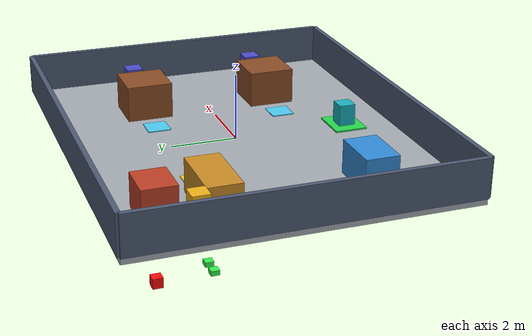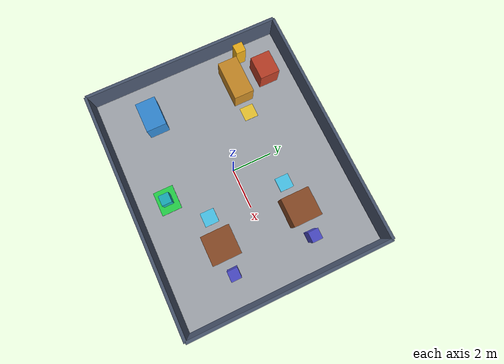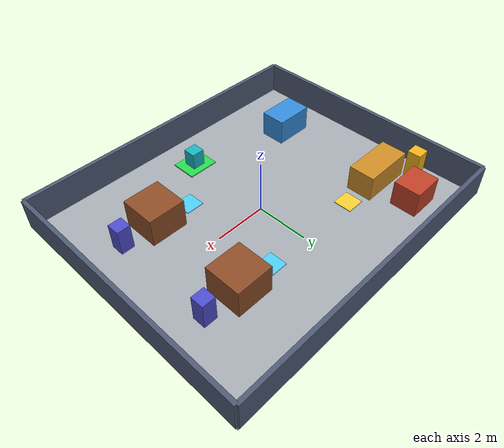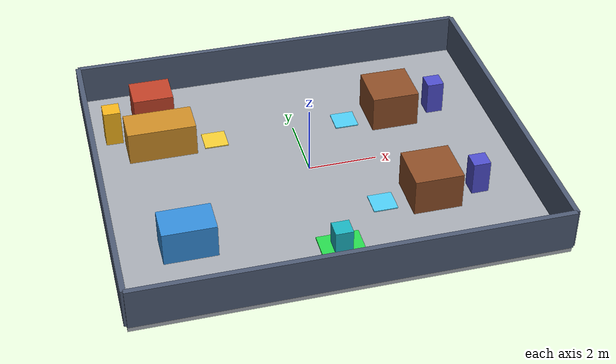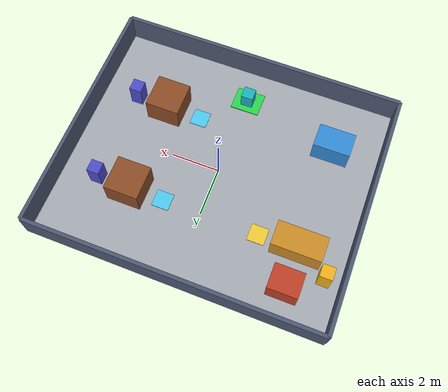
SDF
<?xml version='1.0' encoding='utf-8'?>
<sdf version="1.9">
  <world name="robo_restaurant">
    <physics name="default" type="ignored">
      <max_step_size>0.001</max_step_size>
      <real_time_factor>1</real_time_factor>
    </physics>
    <plugin filename="gz-sim-physics-system" name="gz::sim::systems::Physics" />
    <plugin filename="gz-sim-user-commands-system" name="gz::sim::systems::UserCommands" />
    <plugin filename="gz-sim-scene-broadcaster-system" name="gz::sim::systems::SceneBroadcaster" />
    <gravity>0 0 -9.81</gravity>
    <light name="sun" type="directional">
      <pose>0 0 8 0 0 0</pose>
      <diffuse>0.9 0.9 0.9 1</diffuse>
      <direction>-0.3 0.2 -1</direction>
    </light>
    <model name="floor">
      <static>true</static>
      <pose>0 0 -0.1 0 0 0</pose>
      <link name="body">
        <collision name="collision">
          <geometry>
            <box>
              <size>12 10 0.2</size>
            </box>
          </geometry>
        </collision>
        <visual name="visual">
          <geometry>
            <box>
              <size>12 10 0.2</size>
            </box>
          </geometry>
          <material>
            <ambient>0.65 0.67 0.7 1</ambient>
            <diffuse>0.65 0.67 0.7 1</diffuse>
          </material>
        </visual>
      </link>
    </model>
    <model name="north_wall">
      <static>true</static>
      <pose>0 5 0.6 0 0 0</pose>
      <link name="body">
        <collision name="collision">
          <geometry>
            <box>
              <size>12 0.15 1.2</size>
            </box>
          </geometry>
        </collision>
        <visual name="visual">
          <geometry>
            <box>
              <size>12 0.15 1.2</size>
            </box>
          </geometry>
          <material>
            <ambient>0.3 0.35 0.45 1</ambient>
            <diffuse>0.3 0.35 0.45 1</diffuse>
          </material>
        </visual>
      </link>
    </model>
    <model name="south_wall">
      <static>true</static>
      <pose>0 -5 0.6 0 0 0</pose>
      <link name="body">
        <collision name="collision">
          <geometry>
            <box>
              <size>12 0.15 1.2</size>
            </box>
          </geometry>
        </collision>
        <visual name="visual">
          <geometry>
            <box>
              <size>12 0.15 1.2</size>
            </box>
          </geometry>
          <material>
            <ambient>0.3 0.35 0.45 1</ambient>
            <diffuse>0.3 0.35 0.45 1</diffuse>
          </material>
        </visual>
      </link>
    </model>
    <model name="east_wall">
      <static>true</static>
      <pose>6 0 0.6 0 0 0</pose>
      <link name="body">
        <collision name="collision">
          <geometry>
            <box>
              <size>0.15 10 1.2</size>
            </box>
          </geometry>
        </collision>
        <visual name="visual">
          <geometry>
            <box>
              <size>0.15 10 1.2</size>
            </box>
          </geometry>
          <material>
            <ambient>0.3 0.35 0.45 1</ambient>
            <diffuse>0.3 0.35 0.45 1</diffuse>
          </material>
        </visual>
      </link>
    </model>
    <model name="west_wall">
      <static>true</static>
      <pose>-6 0 0.6 0 0 0</pose>
      <link name="body">
        <collision name="collision">
          <geometry>
            <box>
              <size>0.15 10 1.2</size>
            </box>
          </geometry>
        </collision>
        <visual name="visual">
          <geometry>
            <box>
              <size>0.15 10 1.2</size>
            </box>
          </geometry>
          <material>
            <ambient>0.3 0.35 0.45 1</ambient>
            <diffuse>0.3 0.35 0.45 1</diffuse>
          </material>
        </visual>
      </link>
    </model>
    <model name="kitchen_counter">
      <static>true</static>
      <pose>-4 2 0.5 0 0 0</pose>
      <link name="body">
        <collision name="collision">
          <geometry>
            <box>
              <size>2 1 1</size>
            </box>
          </geometry>
        </collision>
        <visual name="visual">
          <geometry>
            <box>
              <size>2 1 1</size>
            </box>
          </geometry>
          <material>
            <ambient>0.8 0.55 0.15 1</ambient>
            <diffuse>0.8 0.55 0.15 1</diffuse>
          </material>
        </visual>
      </link>
    </model>
    <model name="cooker">
      <static>true</static>
      <pose>-4 3.6 0.5 0 0 0</pose>
      <link name="body">
        <collision name="collision">
          <geometry>
            <box>
              <size>1.2 1 1</size>
            </box>
          </geometry>
        </collision>
        <visual name="visual">
          <geometry>
            <box>
              <size>1.2 1 1</size>
            </box>
          </geometry>
          <material>
            <ambient>0.75 0.25 0.15 1</ambient>
            <diffuse>0.75 0.25 0.15 1</diffuse>
          </material>
        </visual>
      </link>
    </model>
    <model name="cook_robot">
      <static>true</static>
      <pose>-5.3 2.8 0.55 0 0 0</pose>
      <link name="body">
        <collision name="collision">
          <geometry>
            <box>
              <size>0.5 0.5 1.1</size>
            </box>
          </geometry>
        </collision>
        <visual name="visual">
          <geometry>
            <box>
              <size>0.5 0.5 1.1</size>
            </box>
          </geometry>
          <material>
            <ambient>0.95 0.7 0.1 1</ambient>
            <diffuse>0.95 0.7 0.1 1</diffuse>
          </material>
        </visual>
      </link>
    </model>
    <model name="washing_station">
      <static>true</static>
      <pose>-4 -2.5 0.5 0 0 0</pose>
      <link name="body">
        <collision name="collision">
          <geometry>
            <box>
              <size>1.5 1 1</size>
            </box>
          </geometry>
        </collision>
        <visual name="visual">
          <geometry>
            <box>
              <size>1.5 1 1</size>
            </box>
          </geometry>
          <material>
            <ambient>0.2 0.55 0.85 1</ambient>
            <diffuse>0.2 0.55 0.85 1</diffuse>
          </material>
        </visual>
      </link>
    </model>
    <model name="charging_dock">
      <static>true</static>
      <pose>0 -3.5 0.025 0 0 0</pose>
      <link name="body">
        <visual name="visual">
          <geometry>
            <box>
              <size>1.2 1 0.05</size>
            </box>
          </geometry>
          <material>
            <ambient>0.15 0.85 0.3 1</ambient>
            <diffuse>0.15 0.85 0.3 1</diffuse>
          </material>
        </visual>
      </link>
    </model>
    <model name="table_1">
      <static>true</static>
      <pose>3 -2 0.55 0 0 0</pose>
      <link name="body">
        <collision name="collision">
          <geometry>
            <box>
              <size>1.4 1.4 1.1</size>
            </box>
          </geometry>
        </collision>
        <visual name="visual">
          <geometry>
            <box>
              <size>1.4 1.4 1.1</size>
            </box>
          </geometry>
          <material>
            <ambient>0.55 0.3 0.15 1</ambient>
            <diffuse>0.55 0.3 0.15 1</diffuse>
          </material>
        </visual>
      </link>
    </model>
    <model name="customer_robot_1">
      <static>true</static>
      <pose>4.4 -2 0.5 0 0 0</pose>
      <link name="body">
        <collision name="collision">
          <geometry>
            <box>
              <size>0.5 0.5 1</size>
            </box>
          </geometry>
        </collision>
        <visual name="visual">
          <geometry>
            <box>
              <size>0.5 0.5 1</size>
            </box>
          </geometry>
          <material>
            <ambient>0.3 0.3 0.8 1</ambient>
            <diffuse>0.3 0.3 0.8 1</diffuse>
          </material>
        </visual>
      </link>
    </model>
    <model name="table_1_service_zone">
      <static>true</static>
      <pose>1.6 -2 0.015 0 0 0</pose>
      <link name="body">
        <visual name="visual">
          <geometry>
            <box>
              <size>0.7 0.7 0.03</size>
            </box>
          </geometry>
          <material>
            <ambient>0.3 0.8 0.95 1</ambient>
            <diffuse>0.3 0.8 0.95 1</diffuse>
          </material>
        </visual>
      </link>
    </model>
    <model name="table_2">
      <static>true</static>
      <pose>3 2 0.55 0 0 0</pose>
      <link name="body">
        <collision name="collision">
          <geometry>
            <box>
              <size>1.4 1.4 1.1</size>
            </box>
          </geometry>
        </collision>
        <visual name="visual">
          <geometry>
            <box>
              <size>1.4 1.4 1.1</size>
            </box>
          </geometry>
          <material>
            <ambient>0.55 0.3 0.15 1</ambient>
            <diffuse>0.55 0.3 0.15 1</diffuse>
          </material>
        </visual>
      </link>
    </model>
    <model name="customer_robot_2">
      <static>true</static>
      <pose>4.4 2 0.5 0 0 0</pose>
      <link name="body">
        <collision name="collision">
          <geometry>
            <box>
              <size>0.5 0.5 1</size>
            </box>
          </geometry>
        </collision>
        <visual name="visual">
          <geometry>
            <box>
              <size>0.5 0.5 1</size>
            </box>
          </geometry>
          <material>
            <ambient>0.3 0.3 0.8 1</ambient>
            <diffuse>0.3 0.3 0.8 1</diffuse>
          </material>
        </visual>
      </link>
    </model>
    <model name="table_2_service_zone">
      <static>true</static>
      <pose>1.6 2 0.015 0 0 0</pose>
      <link name="body">
        <visual name="visual">
          <geometry>
            <box>
              <size>0.7 0.7 0.03</size>
            </box>
          </geometry>
          <material>
            <ambient>0.3 0.8 0.95 1</ambient>
            <diffuse>0.3 0.8 0.95 1</diffuse>
          </material>
        </visual>
      </link>
    </model>
    <model name="kitchen_service_zone">
      <static>true</static>
      <pose>-2.4 2 0.015 0 0 0</pose>
      <link name="body">
        <visual name="visual">
          <geometry>
            <box>
              <size>0.7 0.7 0.03</size>
            </box>
          </geometry>
          <material>
            <ambient>0.95 0.8 0.2 1</ambient>
            <diffuse>0.95 0.8 0.2 1</diffuse>
          </material>
        </visual>
      </link>
    </model>
    <model name="waiter_proxy">
      <static>true</static>
      <pose>0 -3.5 0.35 0 0 0</pose>
      <link name="body">
        <visual name="visual">
          <geometry>
            <box>
              <size>.5 .5 .7</size>
            </box>
          </geometry>
          <material>
            <ambient>0.1 0.7 0.75 1</ambient>
            <diffuse>0.1 0.7 0.75 1</diffuse>
          </material>
        </visual>
      </link>
    </model>
    <model name="meal_1">
      <static>true</static>
      <pose>-4 2 -2 0 0 0</pose>
      <link name="body">
        <visual name="visual">
          <geometry>
            <box>
              <size>.25 .25 .15</size>
            </box>
          </geometry>
          <material>
            <ambient>0.2 0.95 0.3 1</ambient>
            <diffuse>0.2 0.95 0.3 1</diffuse>
          </material>
        </visual>
      </link>
    </model>
    <model name="meal_2">
      <static>true</static>
      <pose>-3.5 2 -2 0 0 0</pose>
      <link name="body">
        <visual name="visual">
          <geometry>
            <box>
              <size>.25 .25 .15</size>
            </box>
          </geometry>
          <material>
            <ambient>0.2 0.95 0.3 1</ambient>
            <diffuse>0.2 0.95 0.3 1</diffuse>
          </material>
        </visual>
      </link>
    </model>
    <model name="cooker_fault">
      <static>true</static>
      <pose>-4 3.6 -2 0 0 0</pose>
      <link name="body">
        <visual name="visual">
          <geometry>
            <box>
              <size>.3 .3 .3</size>
            </box>
          </geometry>
          <material>
            <ambient>1 0.05 0.05 1</ambient>
            <diffuse>1 0.05 0.05 1</diffuse>
          </material>
        </visual>
      </link>
    </model>
    <gui fullscreen="0">
      <plugin filename="MinimalScene" name="Restaurant overview">
        <gz-gui>
          <title>Restaurant overview</title>
          <property type="string" key="state">docked</property>
        </gz-gui>
        <engine>ogre2</engine>
        <scene>scene</scene>
        <ambient_light>0.4 0.4 0.4</ambient_light>
        <background_color>0.8 0.8 0.8</background_color>
        <camera_pose>-10 -12 14 0 0.73 0.88</camera_pose>
      </plugin>
      <plugin filename="GzSceneManager" name="Scene Manager" />
      <plugin filename="WorldControl" name="World control">
        <play_pause>true</play_pause>
        <step>true</step>
        <start_paused>false</start_paused>
        <service>/world/robo_restaurant/control</service>
        <stats_topic>/world/robo_restaurant/stats</stats_topic>
      </plugin>
      <plugin filename="EntityTree" name="Entity tree" />
    </gui>
  </world>
</sdf>
